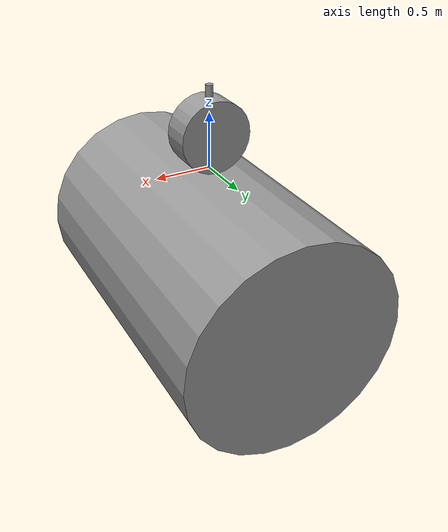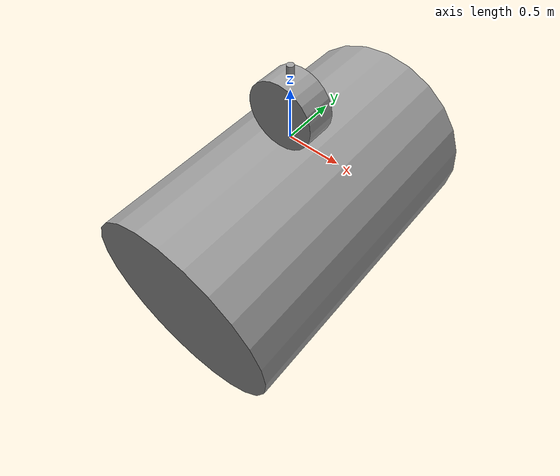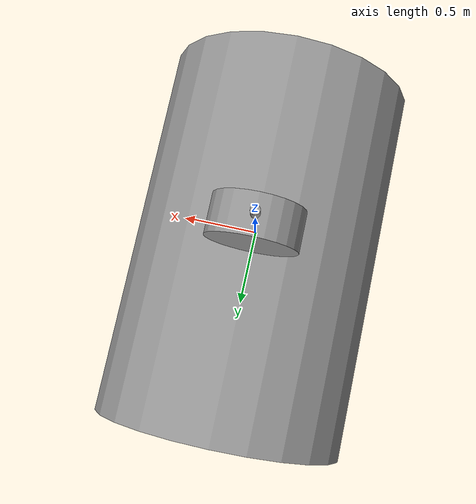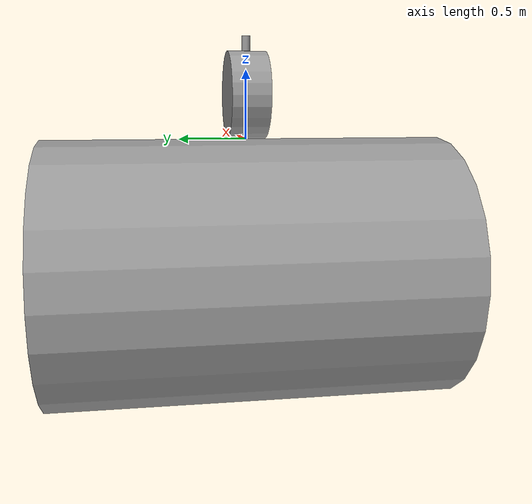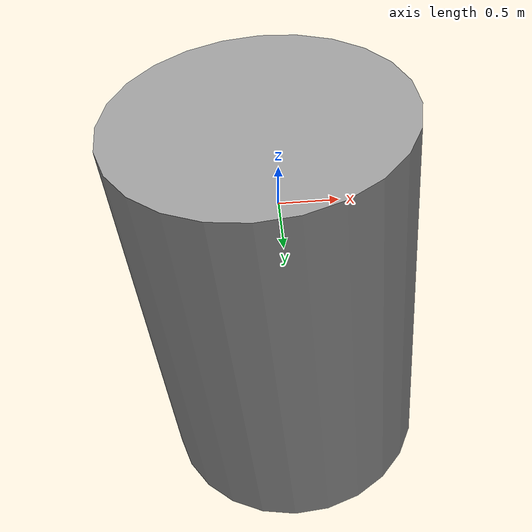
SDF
<?xml version="1.0" ?>

<sdf version="1.5">
  <model name="tire_drum">
    <link name="drum">
      <pose>0 0 -1.0  1.5707963267948966 0 0</pose>
      <inertial>
        <mass>1000</mass>
        <inertia>
          <ixx>1000.0</ixx>
          <iyy>1000.0</iyy>
          <izz>500.0</izz>
          <ixy>0</ixy>
          <ixz>0</ixz>
          <iyz>0</iyz>
        </inertia>
      </inertial>
      <collision name="collision">
        <geometry>
          <cylinder>
                      <radius>1.0</radius>
                      <length>3.0</length>
                    </cylinder>
        </geometry>
      </collision>
      <visual name="visual">
        <geometry>
          <cylinder>
                      <radius>1.0</radius>
                      <length>3.0</length>
                    </cylinder>
        </geometry>
        <material>
          <script>
            <uri>file://media/materials/scripts/gazebo.material</uri>
            <name>Gazebo/Grey</name>
          </script>
        </material>
      </visual>
    </link>
    <joint name="drum_joint" type="revolute">
      <parent>world</parent>
      <child>drum</child>
      <axis>
        <xyz>0 0 1.0</xyz>
      </axis>
    </joint>
    <link name="tire">
      <pose>0 0 0.3175  1.5707963267948966 0 0</pose>
      <self_collide>true</self_collide>
      <inertial>
        <mass>12</mass>
        <inertia>
          <ixx>0.38048311</ixx>
          <iyy>0.38048311</iyy>
          <izz>0.6048375</izz>
          <ixy>0</ixy>
          <ixz>0</ixz>
          <iyz>0</iyz>
        </inertia>
      </inertial>
      <collision name="collision">
        <geometry>
          <cylinder>
                        <radius>0.3175</radius>
                        <length>0.2794</length>
                      </cylinder>
        </geometry>
      </collision>
      <visual name="visual">
        <geometry>
          <cylinder>
                        <radius>0.3175</radius>
                        <length>0.2794</length>
                      </cylinder>
        </geometry>
        <material>
          <script>
            <uri>file://media/materials/scripts/gazebo.material</uri>
            <name>Gazebo/Grey</name>
          </script>
        </material>
      </visual>
    </link>
    <link name="fork">
      <pose>0 0 0.635  0 0 0 </pose>
      <inertial>
        <mass>12</mass>
        <inertia>
          <ixx>0.38048311</ixx>
          <iyy>0.38048311</iyy>
          <izz>0.6048375</izz>
          <ixy>0</ixy>
          <ixz>0</ixz>
          <iyz>0</iyz>
        </inertia>
      </inertial>
      <visual name="steerer">
        <pose>0 0 0.05291666666666667  0 0 0</pose>
        <geometry>
          <cylinder>
            <radius>0.03175</radius>
            <length>0.10583333333333333</length>
          </cylinder>
        </geometry>
        <material>
          <script>
            <uri>file://media/materials/scripts/gazebo.material</uri>
            <name>Gazebo/Grey</name>
          </script>
        </material>
      </visual>
    </link>
    <joint name="spindle" type="revolute">
      <parent>fork</parent>
      <child>tire</child>
      <axis>
        <xyz>0 0 1.0</xyz>
      </axis>
    </joint>
    <joint name="fork_vertical" type="prismatic">
      <parent>world</parent>
      <child>fork</child>
      <axis>
        <xyz>0 0 1</xyz>
      </axis>
    </joint>
  </model>
</sdf>
